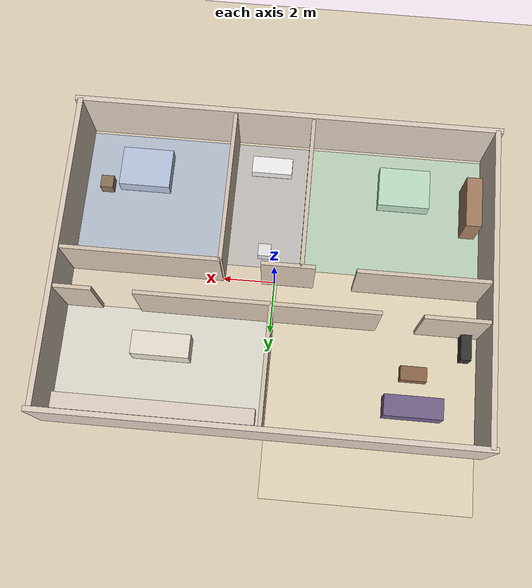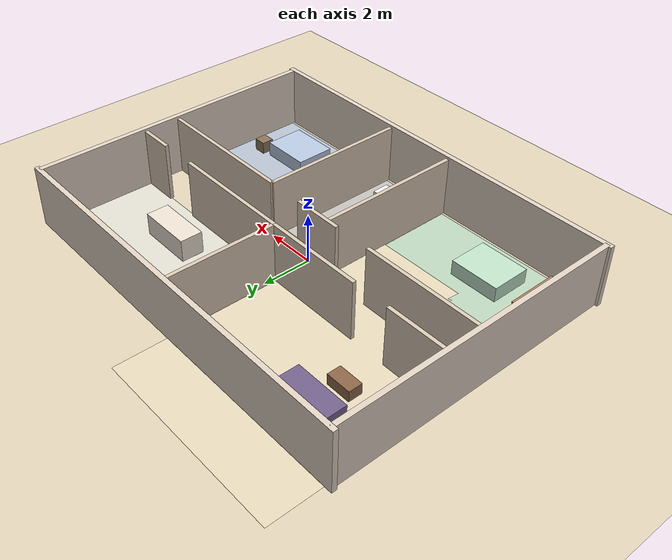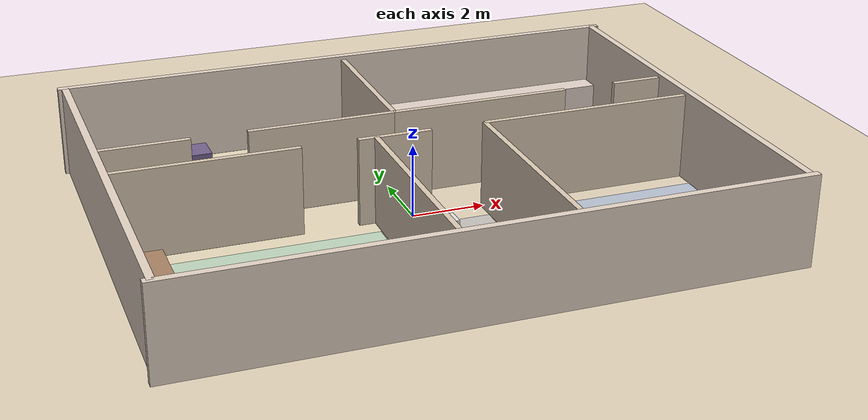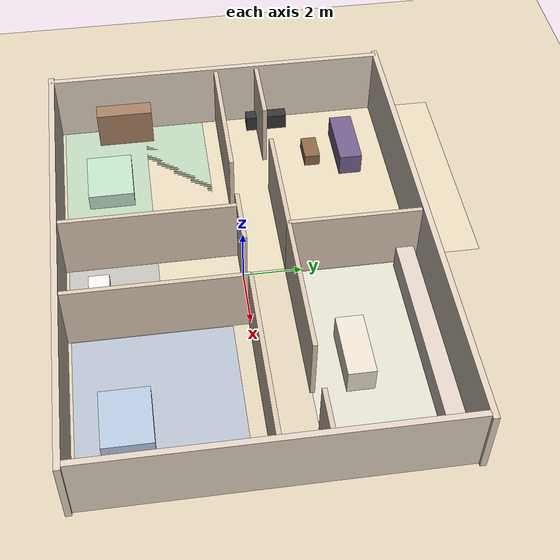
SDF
<?xml version="1.0" ?>
<sdf version='1.8'>
  <world name='house'>

    <physics name='1ms' type='ignored'>
      <max_step_size>0.001</max_step_size>
      <real_time_factor>1</real_time_factor>
    </physics>

    <plugin filename="ignition-gazebo-physics-system"
            name="ignition::gazebo::systems::Physics"/>
    <plugin filename="ignition-gazebo-user-commands-system"
            name="ignition::gazebo::systems::UserCommands"/>
    <plugin filename="ignition-gazebo-scene-broadcaster-system"
            name="ignition::gazebo::systems::SceneBroadcaster"/>
    <plugin filename="ignition-gazebo-sensors-system"
            name="ignition::gazebo::systems::Sensors">
      <render_engine>ogre2</render_engine>
    </plugin>
    <plugin filename="ignition-gazebo-contact-system"
            name="ignition::gazebo::systems::Contact"/>

    <light name='sun' type='directional'>
      <pose>0 0 12 0 0 0</pose>
      <cast_shadows>true</cast_shadows>
      <intensity>1</intensity>
      <direction>-0.3 0.1 -0.9</direction>
      <diffuse>1.0 0.97 0.90 1</diffuse>
      <specular>0.2 0.2 0.2 1</specular>
    </light>
    <light name='ceiling_living' type='point'>
      <pose>-4 3 3 0 0 0</pose>
      <diffuse>0.9 0.85 0.75 1</diffuse>
      <specular>0.1 0.1 0.1 1</specular>
      <attenuation><range>12</range><linear>0.08</linear></attenuation>
    </light>
    <light name='ceiling_kitchen' type='point'>
      <pose>4 4 3 0 0 0</pose>
      <diffuse>0.9 0.9 0.85 1</diffuse>
      <specular>0.1 0.1 0.1 1</specular>
      <attenuation><range>10</range><linear>0.1</linear></attenuation>
    </light>
    <light name='ceiling_hall' type='point'>
      <pose>0 0.5 3 0 0 0</pose>
      <diffuse>0.8 0.8 0.8 1</diffuse>
      <specular>0.1 0.1 0.1 1</specular>
      <attenuation><range>12</range><linear>0.1</linear></attenuation>
    </light>

    <!-- ── Ground / floor ───────────────────────────────────────────────── -->
    <model name='ground_plane'>
      <static>true</static>
      <link name='link'>
        <collision name='c'>
          <geometry><plane><normal>0 0 1</normal><size>100 100</size></plane></geometry>
        </collision>
        <visual name='v'>
          <geometry><plane><normal>0 0 1</normal><size>100 100</size></plane></geometry>
          <material><ambient>0.88 0.82 0.72 1</ambient><diffuse>0.88 0.82 0.72 1</diffuse></material>
        </visual>
      </link>
    </model>

    <!-- ── Room floor pads (h=0.004, coloured per room) ─────────────────── -->
    <!-- Living room: warm cream -->
    <model name='floor_living'>
      <static>true</static><pose>-4 2.7 0.003 0 0 0</pose>
      <link name='link'>
        <collision name='c'><geometry><box><size>7.8 11 0.004</size></box></geometry></collision>
        <visual name='v'><geometry><box><size>7.8 11 0.004</size></box></geometry>
          <material><ambient>0.95 0.90 0.78 0.8</ambient><diffuse>0.95 0.90 0.78 0.8</diffuse></material>
        </visual>
      </link>
    </model>
    <!-- Kitchen: light tile -->
    <model name='floor_kitchen'>
      <static>true</static><pose>4 3.7 0.003 0 0 0</pose>
      <link name='link'>
        <collision name='c'><geometry><box><size>7.8 4.4 0.004</size></box></geometry></collision>
        <visual name='v'><geometry><box><size>7.8 4.4 0.004</size></box></geometry>
          <material><ambient>0.92 0.92 0.88 0.8</ambient><diffuse>0.92 0.92 0.88 0.8</diffuse></material>
        </visual>
      </link>
    </model>
    <!-- Bedroom 1: blue-grey carpet -->
    <model name='floor_bed1'>
      <static>true</static><pose>5 -3.2 0.003 0 0 0</pose>
      <link name='link'>
        <collision name='c'><geometry><box><size>5.8 5.2 0.004</size></box></geometry></collision>
        <visual name='v'><geometry><box><size>5.8 5.2 0.004</size></box></geometry>
          <material><ambient>0.72 0.78 0.88 0.8</ambient><diffuse>0.72 0.78 0.88 0.8</diffuse></material>
        </visual>
      </link>
    </model>
    <!-- Bedroom 2: green carpet -->
    <model name='floor_bed2'>
      <static>true</static><pose>-4.5 -3.2 0.003 0 0 0</pose>
      <link name='link'>
        <collision name='c'><geometry><box><size>6.8 5.2 0.004</size></box></geometry></collision>
        <visual name='v'><geometry><box><size>6.8 5.2 0.004</size></box></geometry>
          <material><ambient>0.75 0.88 0.78 0.8</ambient><diffuse>0.75 0.88 0.78 0.8</diffuse></material>
        </visual>
      </link>
    </model>
    <!-- Bathroom: grey tile -->
    <model name='floor_bath'>
      <static>true</static><pose>0.5 -3.2 0.003 0 0 0</pose>
      <link name='link'>
        <collision name='c'><geometry><box><size>3 5.2 0.004</size></box></geometry></collision>
        <visual name='v'><geometry><box><size>3 5.2 0.004</size></box></geometry>
          <material><ambient>0.78 0.78 0.78 0.8</ambient><diffuse>0.78 0.78 0.78 0.8</diffuse></material>
        </visual>
      </link>
    </model>

    <!-- ── Outer walls (16 m × 12 m, 2.5 m tall, h=0.2 m thick) ─────────── -->
    <!-- North wall -->
    <model name='wall_n'><static>true</static><pose>0  6 1.25 0 0 0</pose><link name='link'>
      <collision name='c'><geometry><box><size>16.4 0.2 2.5</size></box></geometry></collision>
      <visual name='v'><geometry><box><size>16.4 0.2 2.5</size></box></geometry>
        <material><ambient>0.88 0.82 0.76 1</ambient><diffuse>0.88 0.82 0.76 1</diffuse></material>
      </visual></link></model>
    <!-- South wall -->
    <model name='wall_s'><static>true</static><pose>0 -6 1.25 0 0 0</pose><link name='link'>
      <collision name='c'><geometry><box><size>16.4 0.2 2.5</size></box></geometry></collision>
      <visual name='v'><geometry><box><size>16.4 0.2 2.5</size></box></geometry>
        <material><ambient>0.88 0.82 0.76 1</ambient><diffuse>0.88 0.82 0.76 1</diffuse></material>
      </visual></link></model>
    <!-- East wall -->
    <model name='wall_e'><static>true</static><pose>8  0 1.25 0 0 0</pose><link name='link'>
      <collision name='c'><geometry><box><size>0.2 12 2.5</size></box></geometry></collision>
      <visual name='v'><geometry><box><size>0.2 12 2.5</size></box></geometry>
        <material><ambient>0.88 0.82 0.76 1</ambient><diffuse>0.88 0.82 0.76 1</diffuse></material>
      </visual></link></model>
    <!-- West wall -->
    <model name='wall_w'><static>true</static><pose>-8  0 1.25 0 0 0</pose><link name='link'>
      <collision name='c'><geometry><box><size>0.2 12 2.5</size></box></geometry></collision>
      <visual name='v'><geometry><box><size>0.2 12 2.5</size></box></geometry>
        <material><ambient>0.88 0.82 0.76 1</ambient><diffuse>0.88 0.82 0.76 1</diffuse></material>
      </visual></link></model>

    <!-- ── Interior walls ────────────────────────────────────────────────── -->

    <!-- Wall A — south side of hallway (y=0), bedroom/bathroom north walls -->
    <!-- Segment A1: x=-8 to -3 (bedroom2 north) -->
    <model name='wall_A1'><static>true</static><pose>-5.5 0 1.2 0 0 0</pose><link name='link'>
      <collision name='c'><geometry><box><size>5 0.15 2.4</size></box></geometry></collision>
      <visual name='v'><geometry><box><size>5 0.15 2.4</size></box></geometry>
        <material><ambient>0.85 0.78 0.70 1</ambient><diffuse>0.85 0.78 0.70 1</diffuse></material>
      </visual></link></model>
    <!-- Gap A: x=-3 to -1.5 (door to bedroom2) -->
    <!-- Segment A2: x=-1.5 to +0.5 (bathroom north) -->
    <model name='wall_A2'><static>true</static><pose>-0.5 0 1.2 0 0 0</pose><link name='link'>
      <collision name='c'><geometry><box><size>2 0.15 2.4</size></box></geometry></collision>
      <visual name='v'><geometry><box><size>2 0.15 2.4</size></box></geometry>
        <material><ambient>0.85 0.78 0.70 1</ambient><diffuse>0.85 0.78 0.70 1</diffuse></material>
      </visual></link></model>
    <!-- Gap A3: x=0.5 to +2 (door to bathroom) -->
    <!-- Segment A4: x=+2 to +8 (bedroom1 north) -->
    <model name='wall_A4'><static>true</static><pose>5 0 1.2 0 0 0</pose><link name='link'>
      <collision name='c'><geometry><box><size>6 0.15 2.4</size></box></geometry></collision>
      <visual name='v'><geometry><box><size>6 0.15 2.4</size></box></geometry>
        <material><ambient>0.85 0.78 0.70 1</ambient><diffuse>0.85 0.78 0.70 1</diffuse></material>
      </visual></link></model>

    <!-- Wall B — north side of hallway (y=1.5), living room / kitchen south walls -->
    <!-- Segment B1: x=-8 to -5.5 (living room south, west) -->
    <model name='wall_B1'><static>true</static><pose>-6.75 1.5 1.2 0 0 0</pose><link name='link'>
      <collision name='c'><geometry><box><size>2.5 0.15 2.4</size></box></geometry></collision>
      <visual name='v'><geometry><box><size>2.5 0.15 2.4</size></box></geometry>
        <material><ambient>0.85 0.78 0.70 1</ambient><diffuse>0.85 0.78 0.70 1</diffuse></material>
      </visual></link></model>
    <!-- Gap B: x=-5.5 to -4 (door to living room) -->
    <!-- Segment B2: x=-4 to 0 (living room south, east) -->
    <model name='wall_B2'><static>true</static><pose>-2 1.5 1.2 0 0 0</pose><link name='link'>
      <collision name='c'><geometry><box><size>4 0.15 2.4</size></box></geometry></collision>
      <visual name='v'><geometry><box><size>4 0.15 2.4</size></box></geometry>
        <material><ambient>0.85 0.78 0.70 1</ambient><diffuse>0.85 0.78 0.70 1</diffuse></material>
      </visual></link></model>
    <!-- Segment B3: x=0 to +5 (kitchen south, west) -->
    <model name='wall_B3'><static>true</static><pose>2.5 1.5 1.2 0 0 0</pose><link name='link'>
      <collision name='c'><geometry><box><size>5 0.15 2.4</size></box></geometry></collision>
      <visual name='v'><geometry><box><size>5 0.15 2.4</size></box></geometry>
        <material><ambient>0.85 0.78 0.70 1</ambient><diffuse>0.85 0.78 0.70 1</diffuse></material>
      </visual></link></model>
    <!-- Gap B4: x=+5 to +6.5 (door to kitchen) -->
    <!-- Segment B5: x=+6.5 to +8 (kitchen south, east) -->
    <model name='wall_B5'><static>true</static><pose>7.25 1.5 1.2 0 0 0</pose><link name='link'>
      <collision name='c'><geometry><box><size>1.5 0.15 2.4</size></box></geometry></collision>
      <visual name='v'><geometry><box><size>1.5 0.15 2.4</size></box></geometry>
        <material><ambient>0.85 0.78 0.70 1</ambient><diffuse>0.85 0.78 0.70 1</diffuse></material>
      </visual></link></model>

    <!-- Wall C — living/kitchen N-S divider (x=0, y=1.5 to 6) -->
    <model name='wall_C'><static>true</static><pose>0 3.75 1.2 0 0 0</pose><link name='link'>
      <collision name='c'><geometry><box><size>0.15 4.5 2.4</size></box></geometry></collision>
      <visual name='v'><geometry><box><size>0.15 4.5 2.4</size></box></geometry>
        <material><ambient>0.85 0.78 0.70 1</ambient><diffuse>0.85 0.78 0.70 1</diffuse></material>
      </visual></link></model>

    <!-- Wall D — bedroom2 / bathroom divider (x=-1, y=-6 to 0) -->
    <model name='wall_D'><static>true</static><pose>-1 -3 1.2 0 0 0</pose><link name='link'>
      <collision name='c'><geometry><box><size>0.15 6 2.4</size></box></geometry></collision>
      <visual name='v'><geometry><box><size>0.15 6 2.4</size></box></geometry>
        <material><ambient>0.85 0.78 0.70 1</ambient><diffuse>0.85 0.78 0.70 1</diffuse></material>
      </visual></link></model>

    <!-- Wall E — bathroom / bedroom1 divider (x=+2, y=-6 to 0) -->
    <model name='wall_E'><static>true</static><pose>2 -3 1.2 0 0 0</pose><link name='link'>
      <collision name='c'><geometry><box><size>0.15 6 2.4</size></box></geometry></collision>
      <visual name='v'><geometry><box><size>0.15 6 2.4</size></box></geometry>
        <material><ambient>0.85 0.78 0.70 1</ambient><diffuse>0.85 0.78 0.70 1</diffuse></material>
      </visual></link></model>

    <!-- ── Furniture (static obstacles) ─────────────────────────────────── -->

    <!-- Sofa in living room -->
    <model name='sofa'>
      <static>true</static><pose>-5.5 4.5 0.4 0 0 0</pose>
      <link name='link'>
        <collision name='c'><geometry><box><size>2.2 0.8 0.8</size></box></geometry></collision>
        <visual name='v'><geometry><box><size>2.2 0.8 0.8</size></box></geometry>
          <material><ambient>0.45 0.38 0.55 1</ambient><diffuse>0.45 0.38 0.55 1</diffuse></material>
        </visual>
      </link>
    </model>
    <!-- Coffee table -->
    <model name='coffee_table'>
      <static>true</static><pose>-5.5 3.2 0.22 0 0 0</pose>
      <link name='link'>
        <collision name='c'><geometry><box><size>1.0 0.55 0.44</size></box></geometry></collision>
        <visual name='v'><geometry><box><size>1.0 0.55 0.44</size></box></geometry>
          <material><ambient>0.55 0.40 0.28 1</ambient><diffuse>0.55 0.40 0.28 1</diffuse></material>
        </visual>
      </link>
    </model>
    <!-- TV stand (against west wall) -->
    <model name='tv_stand'>
      <static>true</static><pose>-7.4 1.8 0.3 0 0 0</pose>
      <link name='link'>
        <collision name='c'><geometry><box><size>0.4 1.5 0.6</size></box></geometry></collision>
        <visual name='v'><geometry><box><size>0.4 1.5 0.6</size></box></geometry>
          <material><ambient>0.2 0.2 0.2 1</ambient><diffuse>0.2 0.2 0.2 1</diffuse></material>
        </visual>
      </link>
    </model>

    <!-- Kitchen counter (against north wall) -->
    <model name='counter_n'>
      <static>true</static><pose>4 5.4 0.45 0 0 0</pose>
      <link name='link'>
        <collision name='c'><geometry><box><size>7.5 0.6 0.9</size></box></geometry></collision>
        <visual name='v'><geometry><box><size>7.5 0.6 0.9</size></box></geometry>
          <material><ambient>0.88 0.82 0.78 1</ambient><diffuse>0.88 0.82 0.78 1</diffuse></material>
        </visual>
      </link>
    </model>
    <!-- Kitchen island -->
    <model name='island'>
      <static>true</static><pose>4 3.0 0.45 0 0 0</pose>
      <link name='link'>
        <collision name='c'><geometry><box><size>2.2 0.9 0.9</size></box></geometry></collision>
        <visual name='v'><geometry><box><size>2.2 0.9 0.9</size></box></geometry>
          <material><ambient>0.92 0.88 0.82 1</ambient><diffuse>0.92 0.88 0.82 1</diffuse></material>
        </visual>
      </link>
    </model>

    <!-- Bed in bedroom 1 (SE) -->
    <model name='bed_1'>
      <static>true</static><pose>5.5 -4.2 0.3 0 0 0</pose>
      <link name='link'>
        <collision name='c'><geometry><box><size>2.0 1.6 0.6</size></box></geometry></collision>
        <visual name='v'><geometry><box><size>2.0 1.6 0.6</size></box></geometry>
          <material><ambient>0.72 0.78 0.88 1</ambient><diffuse>0.72 0.78 0.88 1</diffuse></material>
        </visual>
      </link>
    </model>
    <!-- Nightstand bed1 -->
    <model name='ns_1'>
      <static>true</static><pose>7.0 -3.5 0.25 0 0 0</pose>
      <link name='link'>
        <collision name='c'><geometry><box><size>0.5 0.5 0.5</size></box></geometry></collision>
        <visual name='v'><geometry><box><size>0.5 0.5 0.5</size></box></geometry>
          <material><ambient>0.55 0.45 0.35 1</ambient><diffuse>0.55 0.45 0.35 1</diffuse></material>
        </visual>
      </link>
    </model>

    <!-- Bed in bedroom 2 (SW) -->
    <model name='bed_2'>
      <static>true</static><pose>-4.8 -4.2 0.3 0 0 0</pose>
      <link name='link'>
        <collision name='c'><geometry><box><size>2.0 1.6 0.6</size></box></geometry></collision>
        <visual name='v'><geometry><box><size>2.0 1.6 0.6</size></box></geometry>
          <material><ambient>0.75 0.88 0.78 1</ambient><diffuse>0.75 0.88 0.78 1</diffuse></material>
        </visual>
      </link>
    </model>
    <!-- Wardrobe bed2 (against west wall) -->
    <model name='wardrobe'>
      <static>true</static><pose>-7.4 -3.5 0.7 0 0 0</pose>
      <link name='link'>
        <collision name='c'><geometry><box><size>0.6 2.0 1.4</size></box></geometry></collision>
        <visual name='v'><geometry><box><size>0.6 2.0 1.4</size></box></geometry>
          <material><ambient>0.65 0.50 0.38 1</ambient><diffuse>0.65 0.50 0.38 1</diffuse></material>
        </visual>
      </link>
    </model>

    <!-- Bathroom fixtures -->
    <!-- Bathtub (against east wall) -->
    <model name='bathtub'>
      <static>true</static><pose>0.5 -4.8 0.2 0 0 0</pose>
      <link name='link'>
        <collision name='c'><geometry><box><size>1.6 0.7 0.4</size></box></geometry></collision>
        <visual name='v'><geometry><box><size>1.6 0.7 0.4</size></box></geometry>
          <material><ambient>0.95 0.95 0.95 1</ambient><diffuse>0.95 0.95 0.95 1</diffuse></material>
        </visual>
      </link>
    </model>
    <!-- Toilet -->
    <model name='toilet'>
      <static>true</static><pose>0.5 -1.2 0.2 0 0 0</pose>
      <link name='link'>
        <collision name='c'><geometry><box><size>0.5 0.5 0.4</size></box></geometry></collision>
        <visual name='v'><geometry><box><size>0.5 0.5 0.4</size></box></geometry>
          <material><ambient>0.90 0.90 0.90 1</ambient><diffuse>0.90 0.90 0.90 1</diffuse></material>
        </visual>
      </link>
    </model>

  </world>
</sdf>
